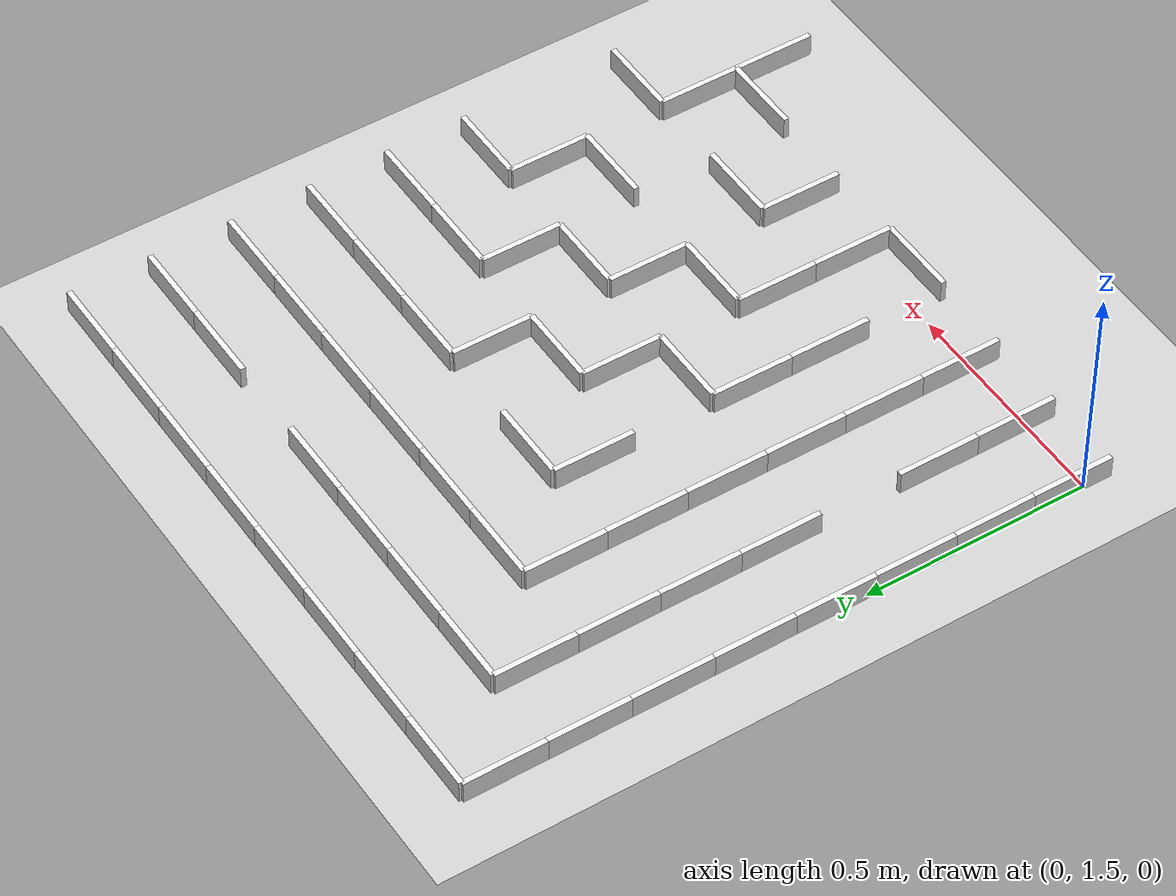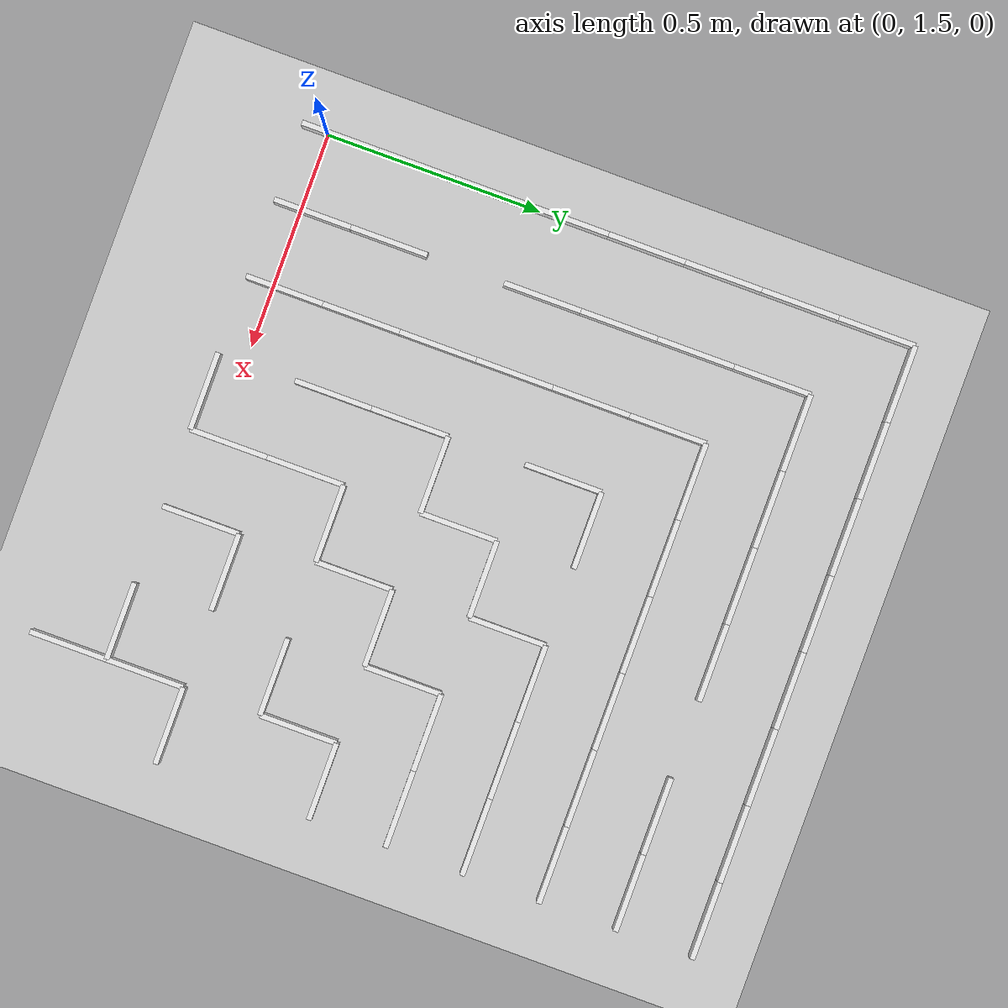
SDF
<sdf version="1.4">
 <world name="default">
  <include><uri>model://ground_plane</uri></include>
  <model name="wall">
   <pose>0.09 2.88 0.025 0 0 0</pose>
   <link name="link">
    <inertial>
     <mass>10</mass>
     <inertia><ixx>1</ixx><ixy>0</ixy><ixz>0</ixz><iyy>1</iyy><iyz>0</iyz><izz>1</izz></inertia>
    </inertial>
    <collision name="collision"><geometry><box><size>0.180 0.012 0.050</size></box></geometry></collision>
    <visual name="visual">
     <geometry><box><size>0.180 0.012 0.050</size></box></geometry>
     <material>
      <script><uri>file://media/materials/scripts/gazebo.material</uri><name>Gazebo/White</name></script>
     </material>
    </visual>
    <velocity_decay><linear>0</linear><angular>0</angular></velocity_decay>
   </link>
   <static>1</static>
  </model>
  <model name="wall">
   <pose>0.27 2.88 0.025 0 0 0</pose>
   <link name="link">
    <inertial>
     <mass>10</mass>
     <inertia><ixx>1</ixx><ixy>0</ixy><ixz>0</ixz><iyy>1</iyy><iyz>0</iyz><izz>1</izz></inertia>
    </inertial>
    <collision name="collision"><geometry><box><size>0.180 0.012 0.050</size></box></geometry></collision>
    <visual name="visual">
     <geometry><box><size>0.180 0.012 0.050</size></box></geometry>
     <material>
      <script><uri>file://media/materials/scripts/gazebo.material</uri><name>Gazebo/White</name></script>
     </material>
    </visual>
    <velocity_decay><linear>0</linear><angular>0</angular></velocity_decay>
   </link>
   <static>1</static>
  </model>
  <model name="wall">
   <pose>0.45 2.88 0.025 0 0 0</pose>
   <link name="link">
    <inertial>
     <mass>10</mass>
     <inertia><ixx>1</ixx><ixy>0</ixy><ixz>0</ixz><iyy>1</iyy><iyz>0</iyz><izz>1</izz></inertia>
    </inertial>
    <collision name="collision"><geometry><box><size>0.180 0.012 0.050</size></box></geometry></collision>
    <visual name="visual">
     <geometry><box><size>0.180 0.012 0.050</size></box></geometry>
     <material>
      <script><uri>file://media/materials/scripts/gazebo.material</uri><name>Gazebo/White</name></script>
     </material>
    </visual>
    <velocity_decay><linear>0</linear><angular>0</angular></velocity_decay>
   </link>
   <static>1</static>
  </model>
  <model name="wall">
   <pose>0.63 2.88 0.025 0 0 0</pose>
   <link name="link">
    <inertial>
     <mass>10</mass>
     <inertia><ixx>1</ixx><ixy>0</ixy><ixz>0</ixz><iyy>1</iyy><iyz>0</iyz><izz>1</izz></inertia>
    </inertial>
    <collision name="collision"><geometry><box><size>0.180 0.012 0.050</size></box></geometry></collision>
    <visual name="visual">
     <geometry><box><size>0.180 0.012 0.050</size></box></geometry>
     <material>
      <script><uri>file://media/materials/scripts/gazebo.material</uri><name>Gazebo/White</name></script>
     </material>
    </visual>
    <velocity_decay><linear>0</linear><angular>0</angular></velocity_decay>
   </link>
   <static>1</static>
  </model>
  <model name="wall">
   <pose>0.81 2.88 0.025 0 0 0</pose>
   <link name="link">
    <inertial>
     <mass>10</mass>
     <inertia><ixx>1</ixx><ixy>0</ixy><ixz>0</ixz><iyy>1</iyy><iyz>0</iyz><izz>1</izz></inertia>
    </inertial>
    <collision name="collision"><geometry><box><size>0.180 0.012 0.050</size></box></geometry></collision>
    <visual name="visual">
     <geometry><box><size>0.180 0.012 0.050</size></box></geometry>
     <material>
      <script><uri>file://media/materials/scripts/gazebo.material</uri><name>Gazebo/White</name></script>
     </material>
    </visual>
    <velocity_decay><linear>0</linear><angular>0</angular></velocity_decay>
   </link>
   <static>1</static>
  </model>
  <model name="wall">
   <pose>0.99 2.88 0.025 0 0 0</pose>
   <link name="link">
    <inertial>
     <mass>10</mass>
     <inertia><ixx>1</ixx><ixy>0</ixy><ixz>0</ixz><iyy>1</iyy><iyz>0</iyz><izz>1</izz></inertia>
    </inertial>
    <collision name="collision"><geometry><box><size>0.180 0.012 0.050</size></box></geometry></collision>
    <visual name="visual">
     <geometry><box><size>0.180 0.012 0.050</size></box></geometry>
     <material>
      <script><uri>file://media/materials/scripts/gazebo.material</uri><name>Gazebo/White</name></script>
     </material>
    </visual>
    <velocity_decay><linear>0</linear><angular>0</angular></velocity_decay>
   </link>
   <static>1</static>
  </model>
  <model name="wall">
   <pose>1.17 2.88 0.025 0 0 0</pose>
   <link name="link">
    <inertial>
     <mass>10</mass>
     <inertia><ixx>1</ixx><ixy>0</ixy><ixz>0</ixz><iyy>1</iyy><iyz>0</iyz><izz>1</izz></inertia>
    </inertial>
    <collision name="collision"><geometry><box><size>0.180 0.012 0.050</size></box></geometry></collision>
    <visual name="visual">
     <geometry><box><size>0.180 0.012 0.050</size></box></geometry>
     <material>
      <script><uri>file://media/materials/scripts/gazebo.material</uri><name>Gazebo/White</name></script>
     </material>
    </visual>
    <velocity_decay><linear>0</linear><angular>0</angular></velocity_decay>
   </link>
   <static>1</static>
  </model>
  <model name="wall">
   <pose>1.35 2.88 0.025 0 0 0</pose>
   <link name="link">
    <inertial>
     <mass>10</mass>
     <inertia><ixx>1</ixx><ixy>0</ixy><ixz>0</ixz><iyy>1</iyy><iyz>0</iyz><izz>1</izz></inertia>
    </inertial>
    <collision name="collision"><geometry><box><size>0.180 0.012 0.050</size></box></geometry></collision>
    <visual name="visual">
     <geometry><box><size>0.180 0.012 0.050</size></box></geometry>
     <material>
      <script><uri>file://media/materials/scripts/gazebo.material</uri><name>Gazebo/White</name></script>
     </material>
    </visual>
    <velocity_decay><linear>0</linear><angular>0</angular></velocity_decay>
   </link>
   <static>1</static>
  </model>
  <model name="wall">
   <pose>0.27 2.7 0.025 0 0 0</pose>
   <link name="link">
    <inertial>
     <mass>10</mass>
     <inertia><ixx>1</ixx><ixy>0</ixy><ixz>0</ixz><iyy>1</iyy><iyz>0</iyz><izz>1</izz></inertia>
    </inertial>
    <collision name="collision"><geometry><box><size>0.180 0.012 0.050</size></box></geometry></collision>
    <visual name="visual">
     <geometry><box><size>0.180 0.012 0.050</size></box></geometry>
     <material>
      <script><uri>file://media/materials/scripts/gazebo.material</uri><name>Gazebo/White</name></script>
     </material>
    </visual>
    <velocity_decay><linear>0</linear><angular>0</angular></velocity_decay>
   </link>
   <static>1</static>
  </model>
  <model name="wall">
   <pose>0.45 2.7 0.025 0 0 0</pose>
   <link name="link">
    <inertial>
     <mass>10</mass>
     <inertia><ixx>1</ixx><ixy>0</ixy><ixz>0</ixz><iyy>1</iyy><iyz>0</iyz><izz>1</izz></inertia>
    </inertial>
    <collision name="collision"><geometry><box><size>0.180 0.012 0.050</size></box></geometry></collision>
    <visual name="visual">
     <geometry><box><size>0.180 0.012 0.050</size></box></geometry>
     <material>
      <script><uri>file://media/materials/scripts/gazebo.material</uri><name>Gazebo/White</name></script>
     </material>
    </visual>
    <velocity_decay><linear>0</linear><angular>0</angular></velocity_decay>
   </link>
   <static>1</static>
  </model>
  <model name="wall">
   <pose>0.63 2.7 0.025 0 0 0</pose>
   <link name="link">
    <inertial>
     <mass>10</mass>
     <inertia><ixx>1</ixx><ixy>0</ixy><ixz>0</ixz><iyy>1</iyy><iyz>0</iyz><izz>1</izz></inertia>
    </inertial>
    <collision name="collision"><geometry><box><size>0.180 0.012 0.050</size></box></geometry></collision>
    <visual name="visual">
     <geometry><box><size>0.180 0.012 0.050</size></box></geometry>
     <material>
      <script><uri>file://media/materials/scripts/gazebo.material</uri><name>Gazebo/White</name></script>
     </material>
    </visual>
    <velocity_decay><linear>0</linear><angular>0</angular></velocity_decay>
   </link>
   <static>1</static>
  </model>
  <model name="wall">
   <pose>0.81 2.7 0.025 0 0 0</pose>
   <link name="link">
    <inertial>
     <mass>10</mass>
     <inertia><ixx>1</ixx><ixy>0</ixy><ixz>0</ixz><iyy>1</iyy><iyz>0</iyz><izz>1</izz></inertia>
    </inertial>
    <collision name="collision"><geometry><box><size>0.180 0.012 0.050</size></box></geometry></collision>
    <visual name="visual">
     <geometry><box><size>0.180 0.012 0.050</size></box></geometry>
     <material>
      <script><uri>file://media/materials/scripts/gazebo.material</uri><name>Gazebo/White</name></script>
     </material>
    </visual>
    <velocity_decay><linear>0</linear><angular>0</angular></velocity_decay>
   </link>
   <static>1</static>
  </model>
  <model name="wall">
   <pose>1.17 2.7 0.025 0 0 0</pose>
   <link name="link">
    <inertial>
     <mass>10</mass>
     <inertia><ixx>1</ixx><ixy>0</ixy><ixz>0</ixz><iyy>1</iyy><iyz>0</iyz><izz>1</izz></inertia>
    </inertial>
    <collision name="collision"><geometry><box><size>0.180 0.012 0.050</size></box></geometry></collision>
    <visual name="visual">
     <geometry><box><size>0.180 0.012 0.050</size></box></geometry>
     <material>
      <script><uri>file://media/materials/scripts/gazebo.material</uri><name>Gazebo/White</name></script>
     </material>
    </visual>
    <velocity_decay><linear>0</linear><angular>0</angular></velocity_decay>
   </link>
   <static>1</static>
  </model>
  <model name="wall">
   <pose>1.35 2.7 0.025 0 0 0</pose>
   <link name="link">
    <inertial>
     <mass>10</mass>
     <inertia><ixx>1</ixx><ixy>0</ixy><ixz>0</ixz><iyy>1</iyy><iyz>0</iyz><izz>1</izz></inertia>
    </inertial>
    <collision name="collision"><geometry><box><size>0.180 0.012 0.050</size></box></geometry></collision>
    <visual name="visual">
     <geometry><box><size>0.180 0.012 0.050</size></box></geometry>
     <material>
      <script><uri>file://media/materials/scripts/gazebo.material</uri><name>Gazebo/White</name></script>
     </material>
    </visual>
    <velocity_decay><linear>0</linear><angular>0</angular></velocity_decay>
   </link>
   <static>1</static>
  </model>
  <model name="wall">
   <pose>0.45 2.52 0.025 0 0 0</pose>
   <link name="link">
    <inertial>
     <mass>10</mass>
     <inertia><ixx>1</ixx><ixy>0</ixy><ixz>0</ixz><iyy>1</iyy><iyz>0</iyz><izz>1</izz></inertia>
    </inertial>
    <collision name="collision"><geometry><box><size>0.180 0.012 0.050</size></box></geometry></collision>
    <visual name="visual">
     <geometry><box><size>0.180 0.012 0.050</size></box></geometry>
     <material>
      <script><uri>file://media/materials/scripts/gazebo.material</uri><name>Gazebo/White</name></script>
     </material>
    </visual>
    <velocity_decay><linear>0</linear><angular>0</angular></velocity_decay>
   </link>
   <static>1</static>
  </model>
  <model name="wall">
   <pose>0.63 2.52 0.025 0 0 0</pose>
   <link name="link">
    <inertial>
     <mass>10</mass>
     <inertia><ixx>1</ixx><ixy>0</ixy><ixz>0</ixz><iyy>1</iyy><iyz>0</iyz><izz>1</izz></inertia>
    </inertial>
    <collision name="collision"><geometry><box><size>0.180 0.012 0.050</size></box></geometry></collision>
    <visual name="visual">
     <geometry><box><size>0.180 0.012 0.050</size></box></geometry>
     <material>
      <script><uri>file://media/materials/scripts/gazebo.material</uri><name>Gazebo/White</name></script>
     </material>
    </visual>
    <velocity_decay><linear>0</linear><angular>0</angular></velocity_decay>
   </link>
   <static>1</static>
  </model>
  <model name="wall">
   <pose>0.81 2.52 0.025 0 0 0</pose>
   <link name="link">
    <inertial>
     <mass>10</mass>
     <inertia><ixx>1</ixx><ixy>0</ixy><ixz>0</ixz><iyy>1</iyy><iyz>0</iyz><izz>1</izz></inertia>
    </inertial>
    <collision name="collision"><geometry><box><size>0.180 0.012 0.050</size></box></geometry></collision>
    <visual name="visual">
     <geometry><box><size>0.180 0.012 0.050</size></box></geometry>
     <material>
      <script><uri>file://media/materials/scripts/gazebo.material</uri><name>Gazebo/White</name></script>
     </material>
    </visual>
    <velocity_decay><linear>0</linear><angular>0</angular></velocity_decay>
   </link>
   <static>1</static>
  </model>
  <model name="wall">
   <pose>0.99 2.52 0.025 0 0 0</pose>
   <link name="link">
    <inertial>
     <mass>10</mass>
     <inertia><ixx>1</ixx><ixy>0</ixy><ixz>0</ixz><iyy>1</iyy><iyz>0</iyz><izz>1</izz></inertia>
    </inertial>
    <collision name="collision"><geometry><box><size>0.180 0.012 0.050</size></box></geometry></collision>
    <visual name="visual">
     <geometry><box><size>0.180 0.012 0.050</size></box></geometry>
     <material>
      <script><uri>file://media/materials/scripts/gazebo.material</uri><name>Gazebo/White</name></script>
     </material>
    </visual>
    <velocity_decay><linear>0</linear><angular>0</angular></velocity_decay>
   </link>
   <static>1</static>
  </model>
  <model name="wall">
   <pose>1.17 2.52 0.025 0 0 0</pose>
   <link name="link">
    <inertial>
     <mass>10</mass>
     <inertia><ixx>1</ixx><ixy>0</ixy><ixz>0</ixz><iyy>1</iyy><iyz>0</iyz><izz>1</izz></inertia>
    </inertial>
    <collision name="collision"><geometry><box><size>0.180 0.012 0.050</size></box></geometry></collision>
    <visual name="visual">
     <geometry><box><size>0.180 0.012 0.050</size></box></geometry>
     <material>
      <script><uri>file://media/materials/scripts/gazebo.material</uri><name>Gazebo/White</name></script>
     </material>
    </visual>
    <velocity_decay><linear>0</linear><angular>0</angular></velocity_decay>
   </link>
   <static>1</static>
  </model>
  <model name="wall">
   <pose>1.35 2.52 0.025 0 0 0</pose>
   <link name="link">
    <inertial>
     <mass>10</mass>
     <inertia><ixx>1</ixx><ixy>0</ixy><ixz>0</ixz><iyy>1</iyy><iyz>0</iyz><izz>1</izz></inertia>
    </inertial>
    <collision name="collision"><geometry><box><size>0.180 0.012 0.050</size></box></geometry></collision>
    <visual name="visual">
     <geometry><box><size>0.180 0.012 0.050</size></box></geometry>
     <material>
      <script><uri>file://media/materials/scripts/gazebo.material</uri><name>Gazebo/White</name></script>
     </material>
    </visual>
    <velocity_decay><linear>0</linear><angular>0</angular></velocity_decay>
   </link>
   <static>1</static>
  </model>
  <model name="wall">
   <pose>0.63 2.34 0.025 0 0 0</pose>
   <link name="link">
    <inertial>
     <mass>10</mass>
     <inertia><ixx>1</ixx><ixy>0</ixy><ixz>0</ixz><iyy>1</iyy><iyz>0</iyz><izz>1</izz></inertia>
    </inertial>
    <collision name="collision"><geometry><box><size>0.180 0.012 0.050</size></box></geometry></collision>
    <visual name="visual">
     <geometry><box><size>0.180 0.012 0.050</size></box></geometry>
     <material>
      <script><uri>file://media/materials/scripts/gazebo.material</uri><name>Gazebo/White</name></script>
     </material>
    </visual>
    <velocity_decay><linear>0</linear><angular>0</angular></velocity_decay>
   </link>
   <static>1</static>
  </model>
  <model name="wall">
   <pose>0.99 2.34 0.025 0 0 0</pose>
   <link name="link">
    <inertial>
     <mass>10</mass>
     <inertia><ixx>1</ixx><ixy>0</ixy><ixz>0</ixz><iyy>1</iyy><iyz>0</iyz><izz>1</izz></inertia>
    </inertial>
    <collision name="collision"><geometry><box><size>0.180 0.012 0.050</size></box></geometry></collision>
    <visual name="visual">
     <geometry><box><size>0.180 0.012 0.050</size></box></geometry>
     <material>
      <script><uri>file://media/materials/scripts/gazebo.material</uri><name>Gazebo/White</name></script>
     </material>
    </visual>
    <velocity_decay><linear>0</linear><angular>0</angular></velocity_decay>
   </link>
   <static>1</static>
  </model>
  <model name="wall">
   <pose>1.17 2.34 0.025 0 0 0</pose>
   <link name="link">
    <inertial>
     <mass>10</mass>
     <inertia><ixx>1</ixx><ixy>0</ixy><ixz>0</ixz><iyy>1</iyy><iyz>0</iyz><izz>1</izz></inertia>
    </inertial>
    <collision name="collision"><geometry><box><size>0.180 0.012 0.050</size></box></geometry></collision>
    <visual name="visual">
     <geometry><box><size>0.180 0.012 0.050</size></box></geometry>
     <material>
      <script><uri>file://media/materials/scripts/gazebo.material</uri><name>Gazebo/White</name></script>
     </material>
    </visual>
    <velocity_decay><linear>0</linear><angular>0</angular></velocity_decay>
   </link>
   <static>1</static>
  </model>
  <model name="wall">
   <pose>1.35 2.34 0.025 0 0 0</pose>
   <link name="link">
    <inertial>
     <mass>10</mass>
     <inertia><ixx>1</ixx><ixy>0</ixy><ixz>0</ixz><iyy>1</iyy><iyz>0</iyz><izz>1</izz></inertia>
    </inertial>
    <collision name="collision"><geometry><box><size>0.180 0.012 0.050</size></box></geometry></collision>
    <visual name="visual">
     <geometry><box><size>0.180 0.012 0.050</size></box></geometry>
     <material>
      <script><uri>file://media/materials/scripts/gazebo.material</uri><name>Gazebo/White</name></script>
     </material>
    </visual>
    <velocity_decay><linear>0</linear><angular>0</angular></velocity_decay>
   </link>
   <static>1</static>
  </model>
  <model name="wall">
   <pose>0.81 2.16 0.025 0 0 0</pose>
   <link name="link">
    <inertial>
     <mass>10</mass>
     <inertia><ixx>1</ixx><ixy>0</ixy><ixz>0</ixz><iyy>1</iyy><iyz>0</iyz><izz>1</izz></inertia>
    </inertial>
    <collision name="collision"><geometry><box><size>0.180 0.012 0.050</size></box></geometry></collision>
    <visual name="visual">
     <geometry><box><size>0.180 0.012 0.050</size></box></geometry>
     <material>
      <script><uri>file://media/materials/scripts/gazebo.material</uri><name>Gazebo/White</name></script>
     </material>
    </visual>
    <velocity_decay><linear>0</linear><angular>0</angular></velocity_decay>
   </link>
   <static>1</static>
  </model>
  <model name="wall">
   <pose>1.17 2.16 0.025 0 0 0</pose>
   <link name="link">
    <inertial>
     <mass>10</mass>
     <inertia><ixx>1</ixx><ixy>0</ixy><ixz>0</ixz><iyy>1</iyy><iyz>0</iyz><izz>1</izz></inertia>
    </inertial>
    <collision name="collision"><geometry><box><size>0.180 0.012 0.050</size></box></geometry></collision>
    <visual name="visual">
     <geometry><box><size>0.180 0.012 0.050</size></box></geometry>
     <material>
      <script><uri>file://media/materials/scripts/gazebo.material</uri><name>Gazebo/White</name></script>
     </material>
    </visual>
    <velocity_decay><linear>0</linear><angular>0</angular></velocity_decay>
   </link>
   <static>1</static>
  </model>
  <model name="wall">
   <pose>1.35 2.16 0.025 0 0 0</pose>
   <link name="link">
    <inertial>
     <mass>10</mass>
     <inertia><ixx>1</ixx><ixy>0</ixy><ixz>0</ixz><iyy>1</iyy><iyz>0</iyz><izz>1</izz></inertia>
    </inertial>
    <collision name="collision"><geometry><box><size>0.180 0.012 0.050</size></box></geometry></collision>
    <visual name="visual">
     <geometry><box><size>0.180 0.012 0.050</size></box></geometry>
     <material>
      <script><uri>file://media/materials/scripts/gazebo.material</uri><name>Gazebo/White</name></script>
     </material>
    </visual>
    <velocity_decay><linear>0</linear><angular>0</angular></velocity_decay>
   </link>
   <static>1</static>
  </model>
  <model name="wall">
   <pose>0.63 1.98 0.025 0 0 0</pose>
   <link name="link">
    <inertial>
     <mass>10</mass>
     <inertia><ixx>1</ixx><ixy>0</ixy><ixz>0</ixz><iyy>1</iyy><iyz>0</iyz><izz>1</izz></inertia>
    </inertial>
    <collision name="collision"><geometry><box><size>0.180 0.012 0.050</size></box></geometry></collision>
    <visual name="visual">
     <geometry><box><size>0.180 0.012 0.050</size></box></geometry>
     <material>
      <script><uri>file://media/materials/scripts/gazebo.material</uri><name>Gazebo/White</name></script>
     </material>
    </visual>
    <velocity_decay><linear>0</linear><angular>0</angular></velocity_decay>
   </link>
   <static>1</static>
  </model>
  <model name="wall">
   <pose>0.99 1.98 0.025 0 0 0</pose>
   <link name="link">
    <inertial>
     <mass>10</mass>
     <inertia><ixx>1</ixx><ixy>0</ixy><ixz>0</ixz><iyy>1</iyy><iyz>0</iyz><izz>1</izz></inertia>
    </inertial>
    <collision name="collision"><geometry><box><size>0.180 0.012 0.050</size></box></geometry></collision>
    <visual name="visual">
     <geometry><box><size>0.180 0.012 0.050</size></box></geometry>
     <material>
      <script><uri>file://media/materials/scripts/gazebo.material</uri><name>Gazebo/White</name></script>
     </material>
    </visual>
    <velocity_decay><linear>0</linear><angular>0</angular></velocity_decay>
   </link>
   <static>1</static>
  </model>
  <model name="wall">
   <pose>1.35 1.98 0.025 0 0 0</pose>
   <link name="link">
    <inertial>
     <mass>10</mass>
     <inertia><ixx>1</ixx><ixy>0</ixy><ixz>0</ixz><iyy>1</iyy><iyz>0</iyz><izz>1</izz></inertia>
    </inertial>
    <collision name="collision"><geometry><box><size>0.180 0.012 0.050</size></box></geometry></collision>
    <visual name="visual">
     <geometry><box><size>0.180 0.012 0.050</size></box></geometry>
     <material>
      <script><uri>file://media/materials/scripts/gazebo.material</uri><name>Gazebo/White</name></script>
     </material>
    </visual>
    <velocity_decay><linear>0</linear><angular>0</angular></velocity_decay>
   </link>
   <static>1</static>
  </model>
  <model name="wall">
   <pose>0.81 1.8 0.025 0 0 0</pose>
   <link name="link">
    <inertial>
     <mass>10</mass>
     <inertia><ixx>1</ixx><ixy>0</ixy><ixz>0</ixz><iyy>1</iyy><iyz>0</iyz><izz>1</izz></inertia>
    </inertial>
    <collision name="collision"><geometry><box><size>0.180 0.012 0.050</size></box></geometry></collision>
    <visual name="visual">
     <geometry><box><size>0.180 0.012 0.050</size></box></geometry>
     <material>
      <script><uri>file://media/materials/scripts/gazebo.material</uri><name>Gazebo/White</name></script>
     </material>
    </visual>
    <velocity_decay><linear>0</linear><angular>0</angular></velocity_decay>
   </link>
   <static>1</static>
  </model>
  <model name="wall">
   <pose>1.17 1.8 0.025 0 0 0</pose>
   <link name="link">
    <inertial>
     <mass>10</mass>
     <inertia><ixx>1</ixx><ixy>0</ixy><ixz>0</ixz><iyy>1</iyy><iyz>0</iyz><izz>1</izz></inertia>
    </inertial>
    <collision name="collision"><geometry><box><size>0.180 0.012 0.050</size></box></geometry></collision>
    <visual name="visual">
     <geometry><box><size>0.180 0.012 0.050</size></box></geometry>
     <material>
      <script><uri>file://media/materials/scripts/gazebo.material</uri><name>Gazebo/White</name></script>
     </material>
    </visual>
    <velocity_decay><linear>0</linear><angular>0</angular></velocity_decay>
   </link>
   <static>1</static>
  </model>
  <model name="wall">
   <pose>0.99 1.62 0.025 0 0 0</pose>
   <link name="link">
    <inertial>
     <mass>10</mass>
     <inertia><ixx>1</ixx><ixy>0</ixy><ixz>0</ixz><iyy>1</iyy><iyz>0</iyz><izz>1</izz></inertia>
    </inertial>
    <collision name="collision"><geometry><box><size>0.180 0.012 0.050</size></box></geometry></collision>
    <visual name="visual">
     <geometry><box><size>0.180 0.012 0.050</size></box></geometry>
     <material>
      <script><uri>file://media/materials/scripts/gazebo.material</uri><name>Gazebo/White</name></script>
     </material>
    </visual>
    <velocity_decay><linear>0</linear><angular>0</angular></velocity_decay>
   </link>
   <static>1</static>
  </model>
  <model name="wall">
   <pose>1.35 1.62 0.025 0 0 0</pose>
   <link name="link">
    <inertial>
     <mass>10</mass>
     <inertia><ixx>1</ixx><ixy>0</ixy><ixz>0</ixz><iyy>1</iyy><iyz>0</iyz><izz>1</izz></inertia>
    </inertial>
    <collision name="collision"><geometry><box><size>0.180 0.012 0.050</size></box></geometry></collision>
    <visual name="visual">
     <geometry><box><size>0.180 0.012 0.050</size></box></geometry>
     <material>
      <script><uri>file://media/materials/scripts/gazebo.material</uri><name>Gazebo/White</name></script>
     </material>
    </visual>
    <velocity_decay><linear>0</linear><angular>0</angular></velocity_decay>
   </link>
   <static>1</static>
  </model>
  <model name="wall">
   <pose>0.63 1.44 0.025 0 0 0</pose>
   <link name="link">
    <inertial>
     <mass>10</mass>
     <inertia><ixx>1</ixx><ixy>0</ixy><ixz>0</ixz><iyy>1</iyy><iyz>0</iyz><izz>1</izz></inertia>
    </inertial>
    <collision name="collision"><geometry><box><size>0.180 0.012 0.050</size></box></geometry></collision>
    <visual name="visual">
     <geometry><box><size>0.180 0.012 0.050</size></box></geometry>
     <material>
      <script><uri>file://media/materials/scripts/gazebo.material</uri><name>Gazebo/White</name></script>
     </material>
    </visual>
    <velocity_decay><linear>0</linear><angular>0</angular></velocity_decay>
   </link>
   <static>1</static>
  </model>
  <model name="wall">
   <pose>1.17 1.44 0.025 0 0 0</pose>
   <link name="link">
    <inertial>
     <mass>10</mass>
     <inertia><ixx>1</ixx><ixy>0</ixy><ixz>0</ixz><iyy>1</iyy><iyz>0</iyz><izz>1</izz></inertia>
    </inertial>
    <collision name="collision"><geometry><box><size>0.180 0.012 0.050</size></box></geometry></collision>
    <visual name="visual">
     <geometry><box><size>0.180 0.012 0.050</size></box></geometry>
     <material>
      <script><uri>file://media/materials/scripts/gazebo.material</uri><name>Gazebo/White</name></script>
     </material>
    </visual>
    <velocity_decay><linear>0</linear><angular>0</angular></velocity_decay>
   </link>
   <static>1</static>
  </model>
  <model name="wall">
   <pose>0.0 2.79 0.025 0 0 1.57</pose>
   <link name="link">
    <inertial>
     <mass>10</mass>
     <inertia><ixx>1</ixx><ixy>0</ixy><ixz>0</ixz><iyy>1</iyy><iyz>0</iyz><izz>1</izz></inertia>
    </inertial>
    <collision name="collision"><geometry><box><size>0.180 0.012 0.050</size></box></geometry></collision>
    <visual name="visual">
     <geometry><box><size>0.180 0.012 0.050</size></box></geometry>
     <material>
      <script><uri>file://media/materials/scripts/gazebo.material</uri><name>Gazebo/White</name></script>
     </material>
    </visual>
    <velocity_decay><linear>0</linear><angular>0</angular></velocity_decay>
   </link>
   <static>1</static>
  </model>
  <model name="wall">
   <pose>0.0 2.61 0.025 0 0 1.57</pose>
   <link name="link">
    <inertial>
     <mass>10</mass>
     <inertia><ixx>1</ixx><ixy>0</ixy><ixz>0</ixz><iyy>1</iyy><iyz>0</iyz><izz>1</izz></inertia>
    </inertial>
    <collision name="collision"><geometry><box><size>0.180 0.012 0.050</size></box></geometry></collision>
    <visual name="visual">
     <geometry><box><size>0.180 0.012 0.050</size></box></geometry>
     <material>
      <script><uri>file://media/materials/scripts/gazebo.material</uri><name>Gazebo/White</name></script>
     </material>
    </visual>
    <velocity_decay><linear>0</linear><angular>0</angular></velocity_decay>
   </link>
   <static>1</static>
  </model>
  <model name="wall">
   <pose>0.18 2.61 0.025 0 0 1.57</pose>
   <link name="link">
    <inertial>
     <mass>10</mass>
     <inertia><ixx>1</ixx><ixy>0</ixy><ixz>0</ixz><iyy>1</iyy><iyz>0</iyz><izz>1</izz></inertia>
    </inertial>
    <collision name="collision"><geometry><box><size>0.180 0.012 0.050</size></box></geometry></collision>
    <visual name="visual">
     <geometry><box><size>0.180 0.012 0.050</size></box></geometry>
     <material>
      <script><uri>file://media/materials/scripts/gazebo.material</uri><name>Gazebo/White</name></script>
     </material>
    </visual>
    <velocity_decay><linear>0</linear><angular>0</angular></velocity_decay>
   </link>
   <static>1</static>
  </model>
  <model name="wall">
   <pose>0.0 2.43 0.025 0 0 1.57</pose>
   <link name="link">
    <inertial>
     <mass>10</mass>
     <inertia><ixx>1</ixx><ixy>0</ixy><ixz>0</ixz><iyy>1</iyy><iyz>0</iyz><izz>1</izz></inertia>
    </inertial>
    <collision name="collision"><geometry><box><size>0.180 0.012 0.050</size></box></geometry></collision>
    <visual name="visual">
     <geometry><box><size>0.180 0.012 0.050</size></box></geometry>
     <material>
      <script><uri>file://media/materials/scripts/gazebo.material</uri><name>Gazebo/White</name></script>
     </material>
    </visual>
    <velocity_decay><linear>0</linear><angular>0</angular></velocity_decay>
   </link>
   <static>1</static>
  </model>
  <model name="wall">
   <pose>0.18 2.43 0.025 0 0 1.57</pose>
   <link name="link">
    <inertial>
     <mass>10</mass>
     <inertia><ixx>1</ixx><ixy>0</ixy><ixz>0</ixz><iyy>1</iyy><iyz>0</iyz><izz>1</izz></inertia>
    </inertial>
    <collision name="collision"><geometry><box><size>0.180 0.012 0.050</size></box></geometry></collision>
    <visual name="visual">
     <geometry><box><size>0.180 0.012 0.050</size></box></geometry>
     <material>
      <script><uri>file://media/materials/scripts/gazebo.material</uri><name>Gazebo/White</name></script>
     </material>
    </visual>
    <velocity_decay><linear>0</linear><angular>0</angular></velocity_decay>
   </link>
   <static>1</static>
  </model>
  <model name="wall">
   <pose>0.36 2.43 0.025 0 0 1.57</pose>
   <link name="link">
    <inertial>
     <mass>10</mass>
     <inertia><ixx>1</ixx><ixy>0</ixy><ixz>0</ixz><iyy>1</iyy><iyz>0</iyz><izz>1</izz></inertia>
    </inertial>
    <collision name="collision"><geometry><box><size>0.180 0.012 0.050</size></box></geometry></collision>
    <visual name="visual">
     <geometry><box><size>0.180 0.012 0.050</size></box></geometry>
     <material>
      <script><uri>file://media/materials/scripts/gazebo.material</uri><name>Gazebo/White</name></script>
     </material>
    </visual>
    <velocity_decay><linear>0</linear><angular>0</angular></velocity_decay>
   </link>
   <static>1</static>
  </model>
  <model name="wall">
   <pose>0.0 2.25 0.025 0 0 1.57</pose>
   <link name="link">
    <inertial>
     <mass>10</mass>
     <inertia><ixx>1</ixx><ixy>0</ixy><ixz>0</ixz><iyy>1</iyy><iyz>0</iyz><izz>1</izz></inertia>
    </inertial>
    <collision name="collision"><geometry><box><size>0.180 0.012 0.050</size></box></geometry></collision>
    <visual name="visual">
     <geometry><box><size>0.180 0.012 0.050</size></box></geometry>
     <material>
      <script><uri>file://media/materials/scripts/gazebo.material</uri><name>Gazebo/White</name></script>
     </material>
    </visual>
    <velocity_decay><linear>0</linear><angular>0</angular></velocity_decay>
   </link>
   <static>1</static>
  </model>
  <model name="wall">
   <pose>0.18 2.25 0.025 0 0 1.57</pose>
   <link name="link">
    <inertial>
     <mass>10</mass>
     <inertia><ixx>1</ixx><ixy>0</ixy><ixz>0</ixz><iyy>1</iyy><iyz>0</iyz><izz>1</izz></inertia>
    </inertial>
    <collision name="collision"><geometry><box><size>0.180 0.012 0.050</size></box></geometry></collision>
    <visual name="visual">
     <geometry><box><size>0.180 0.012 0.050</size></box></geometry>
     <material>
      <script><uri>file://media/materials/scripts/gazebo.material</uri><name>Gazebo/White</name></script>
     </material>
    </visual>
    <velocity_decay><linear>0</linear><angular>0</angular></velocity_decay>
   </link>
   <static>1</static>
  </model>
  <model name="wall">
   <pose>0.36 2.25 0.025 0 0 1.57</pose>
   <link name="link">
    <inertial>
     <mass>10</mass>
     <inertia><ixx>1</ixx><ixy>0</ixy><ixz>0</ixz><iyy>1</iyy><iyz>0</iyz><izz>1</izz></inertia>
    </inertial>
    <collision name="collision"><geometry><box><size>0.180 0.012 0.050</size></box></geometry></collision>
    <visual name="visual">
     <geometry><box><size>0.180 0.012 0.050</size></box></geometry>
     <material>
      <script><uri>file://media/materials/scripts/gazebo.material</uri><name>Gazebo/White</name></script>
     </material>
    </visual>
    <velocity_decay><linear>0</linear><angular>0</angular></velocity_decay>
   </link>
   <static>1</static>
  </model>
  <model name="wall">
   <pose>0.54 2.25 0.025 0 0 1.57</pose>
   <link name="link">
    <inertial>
     <mass>10</mass>
     <inertia><ixx>1</ixx><ixy>0</ixy><ixz>0</ixz><iyy>1</iyy><iyz>0</iyz><izz>1</izz></inertia>
    </inertial>
    <collision name="collision"><geometry><box><size>0.180 0.012 0.050</size></box></geometry></collision>
    <visual name="visual">
     <geometry><box><size>0.180 0.012 0.050</size></box></geometry>
     <material>
      <script><uri>file://media/materials/scripts/gazebo.material</uri><name>Gazebo/White</name></script>
     </material>
    </visual>
    <velocity_decay><linear>0</linear><angular>0</angular></velocity_decay>
   </link>
   <static>1</static>
  </model>
  <model name="wall">
   <pose>0.9 2.25 0.025 0 0 1.57</pose>
   <link name="link">
    <inertial>
     <mass>10</mass>
     <inertia><ixx>1</ixx><ixy>0</ixy><ixz>0</ixz><iyy>1</iyy><iyz>0</iyz><izz>1</izz></inertia>
    </inertial>
    <collision name="collision"><geometry><box><size>0.180 0.012 0.050</size></box></geometry></collision>
    <visual name="visual">
     <geometry><box><size>0.180 0.012 0.050</size></box></geometry>
     <material>
      <script><uri>file://media/materials/scripts/gazebo.material</uri><name>Gazebo/White</name></script>
     </material>
    </visual>
    <velocity_decay><linear>0</linear><angular>0</angular></velocity_decay>
   </link>
   <static>1</static>
  </model>
  <model name="wall">
   <pose>0.0 2.07 0.025 0 0 1.57</pose>
   <link name="link">
    <inertial>
     <mass>10</mass>
     <inertia><ixx>1</ixx><ixy>0</ixy><ixz>0</ixz><iyy>1</iyy><iyz>0</iyz><izz>1</izz></inertia>
    </inertial>
    <collision name="collision"><geometry><box><size>0.180 0.012 0.050</size></box></geometry></collision>
    <visual name="visual">
     <geometry><box><size>0.180 0.012 0.050</size></box></geometry>
     <material>
      <script><uri>file://media/materials/scripts/gazebo.material</uri><name>Gazebo/White</name></script>
     </material>
    </visual>
    <velocity_decay><linear>0</linear><angular>0</angular></velocity_decay>
   </link>
   <static>1</static>
  </model>
  <model name="wall">
   <pose>0.18 2.07 0.025 0 0 1.57</pose>
   <link name="link">
    <inertial>
     <mass>10</mass>
     <inertia><ixx>1</ixx><ixy>0</ixy><ixz>0</ixz><iyy>1</iyy><iyz>0</iyz><izz>1</izz></inertia>
    </inertial>
    <collision name="collision"><geometry><box><size>0.180 0.012 0.050</size></box></geometry></collision>
    <visual name="visual">
     <geometry><box><size>0.180 0.012 0.050</size></box></geometry>
     <material>
      <script><uri>file://media/materials/scripts/gazebo.material</uri><name>Gazebo/White</name></script>
     </material>
    </visual>
    <velocity_decay><linear>0</linear><angular>0</angular></velocity_decay>
   </link>
   <static>1</static>
  </model>
  <model name="wall">
   <pose>0.36 2.07 0.025 0 0 1.57</pose>
   <link name="link">
    <inertial>
     <mass>10</mass>
     <inertia><ixx>1</ixx><ixy>0</ixy><ixz>0</ixz><iyy>1</iyy><iyz>0</iyz><izz>1</izz></inertia>
    </inertial>
    <collision name="collision"><geometry><box><size>0.180 0.012 0.050</size></box></geometry></collision>
    <visual name="visual">
     <geometry><box><size>0.180 0.012 0.050</size></box></geometry>
     <material>
      <script><uri>file://media/materials/scripts/gazebo.material</uri><name>Gazebo/White</name></script>
     </material>
    </visual>
    <velocity_decay><linear>0</linear><angular>0</angular></velocity_decay>
   </link>
   <static>1</static>
  </model>
  <model name="wall">
   <pose>0.72 2.07 0.025 0 0 1.57</pose>
   <link name="link">
    <inertial>
     <mass>10</mass>
     <inertia><ixx>1</ixx><ixy>0</ixy><ixz>0</ixz><iyy>1</iyy><iyz>0</iyz><izz>1</izz></inertia>
    </inertial>
    <collision name="collision"><geometry><box><size>0.180 0.012 0.050</size></box></geometry></collision>
    <visual name="visual">
     <geometry><box><size>0.180 0.012 0.050</size></box></geometry>
     <material>
      <script><uri>file://media/materials/scripts/gazebo.material</uri><name>Gazebo/White</name></script>
     </material>
    </visual>
    <velocity_decay><linear>0</linear><angular>0</angular></velocity_decay>
   </link>
   <static>1</static>
  </model>
  <model name="wall">
   <pose>1.08 2.07 0.025 0 0 1.57</pose>
   <link name="link">
    <inertial>
     <mass>10</mass>
     <inertia><ixx>1</ixx><ixy>0</ixy><ixz>0</ixz><iyy>1</iyy><iyz>0</iyz><izz>1</izz></inertia>
    </inertial>
    <collision name="collision"><geometry><box><size>0.180 0.012 0.050</size></box></geometry></collision>
    <visual name="visual">
     <geometry><box><size>0.180 0.012 0.050</size></box></geometry>
     <material>
      <script><uri>file://media/materials/scripts/gazebo.material</uri><name>Gazebo/White</name></script>
     </material>
    </visual>
    <velocity_decay><linear>0</linear><angular>0</angular></velocity_decay>
   </link>
   <static>1</static>
  </model>
  <model name="wall">
   <pose>0.0 1.89 0.025 0 0 1.57</pose>
   <link name="link">
    <inertial>
     <mass>10</mass>
     <inertia><ixx>1</ixx><ixy>0</ixy><ixz>0</ixz><iyy>1</iyy><iyz>0</iyz><izz>1</izz></inertia>
    </inertial>
    <collision name="collision"><geometry><box><size>0.180 0.012 0.050</size></box></geometry></collision>
    <visual name="visual">
     <geometry><box><size>0.180 0.012 0.050</size></box></geometry>
     <material>
      <script><uri>file://media/materials/scripts/gazebo.material</uri><name>Gazebo/White</name></script>
     </material>
    </visual>
    <velocity_decay><linear>0</linear><angular>0</angular></velocity_decay>
   </link>
   <static>1</static>
  </model>
  <model name="wall">
   <pose>0.36 1.89 0.025 0 0 1.57</pose>
   <link name="link">
    <inertial>
     <mass>10</mass>
     <inertia><ixx>1</ixx><ixy>0</ixy><ixz>0</ixz><iyy>1</iyy><iyz>0</iyz><izz>1</izz></inertia>
    </inertial>
    <collision name="collision"><geometry><box><size>0.180 0.012 0.050</size></box></geometry></collision>
    <visual name="visual">
     <geometry><box><size>0.180 0.012 0.050</size></box></geometry>
     <material>
      <script><uri>file://media/materials/scripts/gazebo.material</uri><name>Gazebo/White</name></script>
     </material>
    </visual>
    <velocity_decay><linear>0</linear><angular>0</angular></velocity_decay>
   </link>
   <static>1</static>
  </model>
  <model name="wall">
   <pose>0.54 1.89 0.025 0 0 1.57</pose>
   <link name="link">
    <inertial>
     <mass>10</mass>
     <inertia><ixx>1</ixx><ixy>0</ixy><ixz>0</ixz><iyy>1</iyy><iyz>0</iyz><izz>1</izz></inertia>
    </inertial>
    <collision name="collision"><geometry><box><size>0.180 0.012 0.050</size></box></geometry></collision>
    <visual name="visual">
     <geometry><box><size>0.180 0.012 0.050</size></box></geometry>
     <material>
      <script><uri>file://media/materials/scripts/gazebo.material</uri><name>Gazebo/White</name></script>
     </material>
    </visual>
    <velocity_decay><linear>0</linear><angular>0</angular></velocity_decay>
   </link>
   <static>1</static>
  </model>
  <model name="wall">
   <pose>0.9 1.89 0.025 0 0 1.57</pose>
   <link name="link">
    <inertial>
     <mass>10</mass>
     <inertia><ixx>1</ixx><ixy>0</ixy><ixz>0</ixz><iyy>1</iyy><iyz>0</iyz><izz>1</izz></inertia>
    </inertial>
    <collision name="collision"><geometry><box><size>0.180 0.012 0.050</size></box></geometry></collision>
    <visual name="visual">
     <geometry><box><size>0.180 0.012 0.050</size></box></geometry>
     <material>
      <script><uri>file://media/materials/scripts/gazebo.material</uri><name>Gazebo/White</name></script>
     </material>
    </visual>
    <velocity_decay><linear>0</linear><angular>0</angular></velocity_decay>
   </link>
   <static>1</static>
  </model>
  <model name="wall">
   <pose>1.26 1.89 0.025 0 0 1.57</pose>
   <link name="link">
    <inertial>
     <mass>10</mass>
     <inertia><ixx>1</ixx><ixy>0</ixy><ixz>0</ixz><iyy>1</iyy><iyz>0</iyz><izz>1</izz></inertia>
    </inertial>
    <collision name="collision"><geometry><box><size>0.180 0.012 0.050</size></box></geometry></collision>
    <visual name="visual">
     <geometry><box><size>0.180 0.012 0.050</size></box></geometry>
     <material>
      <script><uri>file://media/materials/scripts/gazebo.material</uri><name>Gazebo/White</name></script>
     </material>
    </visual>
    <velocity_decay><linear>0</linear><angular>0</angular></velocity_decay>
   </link>
   <static>1</static>
  </model>
  <model name="wall">
   <pose>0.0 1.71 0.025 0 0 1.57</pose>
   <link name="link">
    <inertial>
     <mass>10</mass>
     <inertia><ixx>1</ixx><ixy>0</ixy><ixz>0</ixz><iyy>1</iyy><iyz>0</iyz><izz>1</izz></inertia>
    </inertial>
    <collision name="collision"><geometry><box><size>0.180 0.012 0.050</size></box></geometry></collision>
    <visual name="visual">
     <geometry><box><size>0.180 0.012 0.050</size></box></geometry>
     <material>
      <script><uri>file://media/materials/scripts/gazebo.material</uri><name>Gazebo/White</name></script>
     </material>
    </visual>
    <velocity_decay><linear>0</linear><angular>0</angular></velocity_decay>
   </link>
   <static>1</static>
  </model>
  <model name="wall">
   <pose>0.18 1.71 0.025 0 0 1.57</pose>
   <link name="link">
    <inertial>
     <mass>10</mass>
     <inertia><ixx>1</ixx><ixy>0</ixy><ixz>0</ixz><iyy>1</iyy><iyz>0</iyz><izz>1</izz></inertia>
    </inertial>
    <collision name="collision"><geometry><box><size>0.180 0.012 0.050</size></box></geometry></collision>
    <visual name="visual">
     <geometry><box><size>0.180 0.012 0.050</size></box></geometry>
     <material>
      <script><uri>file://media/materials/scripts/gazebo.material</uri><name>Gazebo/White</name></script>
     </material>
    </visual>
    <velocity_decay><linear>0</linear><angular>0</angular></velocity_decay>
   </link>
   <static>1</static>
  </model>
  <model name="wall">
   <pose>0.36 1.71 0.025 0 0 1.57</pose>
   <link name="link">
    <inertial>
     <mass>10</mass>
     <inertia><ixx>1</ixx><ixy>0</ixy><ixz>0</ixz><iyy>1</iyy><iyz>0</iyz><izz>1</izz></inertia>
    </inertial>
    <collision name="collision"><geometry><box><size>0.180 0.012 0.050</size></box></geometry></collision>
    <visual name="visual">
     <geometry><box><size>0.180 0.012 0.050</size></box></geometry>
     <material>
      <script><uri>file://media/materials/scripts/gazebo.material</uri><name>Gazebo/White</name></script>
     </material>
    </visual>
    <velocity_decay><linear>0</linear><angular>0</angular></velocity_decay>
   </link>
   <static>1</static>
  </model>
  <model name="wall">
   <pose>0.54 1.71 0.025 0 0 1.57</pose>
   <link name="link">
    <inertial>
     <mass>10</mass>
     <inertia><ixx>1</ixx><ixy>0</ixy><ixz>0</ixz><iyy>1</iyy><iyz>0</iyz><izz>1</izz></inertia>
    </inertial>
    <collision name="collision"><geometry><box><size>0.180 0.012 0.050</size></box></geometry></collision>
    <visual name="visual">
     <geometry><box><size>0.180 0.012 0.050</size></box></geometry>
     <material>
      <script><uri>file://media/materials/scripts/gazebo.material</uri><name>Gazebo/White</name></script>
     </material>
    </visual>
    <velocity_decay><linear>0</linear><angular>0</angular></velocity_decay>
   </link>
   <static>1</static>
  </model>
  <model name="wall">
   <pose>0.72 1.71 0.025 0 0 1.57</pose>
   <link name="link">
    <inertial>
     <mass>10</mass>
     <inertia><ixx>1</ixx><ixy>0</ixy><ixz>0</ixz><iyy>1</iyy><iyz>0</iyz><izz>1</izz></inertia>
    </inertial>
    <collision name="collision"><geometry><box><size>0.180 0.012 0.050</size></box></geometry></collision>
    <visual name="visual">
     <geometry><box><size>0.180 0.012 0.050</size></box></geometry>
     <material>
      <script><uri>file://media/materials/scripts/gazebo.material</uri><name>Gazebo/White</name></script>
     </material>
    </visual>
    <velocity_decay><linear>0</linear><angular>0</angular></velocity_decay>
   </link>
   <static>1</static>
  </model>
  <model name="wall">
   <pose>0.0 1.53 0.025 0 0 1.57</pose>
   <link name="link">
    <inertial>
     <mass>10</mass>
     <inertia><ixx>1</ixx><ixy>0</ixy><ixz>0</ixz><iyy>1</iyy><iyz>0</iyz><izz>1</izz></inertia>
    </inertial>
    <collision name="collision"><geometry><box><size>0.180 0.012 0.050</size></box></geometry></collision>
    <visual name="visual">
     <geometry><box><size>0.180 0.012 0.050</size></box></geometry>
     <material>
      <script><uri>file://media/materials/scripts/gazebo.material</uri><name>Gazebo/White</name></script>
     </material>
    </visual>
    <velocity_decay><linear>0</linear><angular>0</angular></velocity_decay>
   </link>
   <static>1</static>
  </model>
  <model name="wall">
   <pose>0.18 1.53 0.025 0 0 1.57</pose>
   <link name="link">
    <inertial>
     <mass>10</mass>
     <inertia><ixx>1</ixx><ixy>0</ixy><ixz>0</ixz><iyy>1</iyy><iyz>0</iyz><izz>1</izz></inertia>
    </inertial>
    <collision name="collision"><geometry><box><size>0.180 0.012 0.050</size></box></geometry></collision>
    <visual name="visual">
     <geometry><box><size>0.180 0.012 0.050</size></box></geometry>
     <material>
      <script><uri>file://media/materials/scripts/gazebo.material</uri><name>Gazebo/White</name></script>
     </material>
    </visual>
    <velocity_decay><linear>0</linear><angular>0</angular></velocity_decay>
   </link>
   <static>1</static>
  </model>
  <model name="wall">
   <pose>0.36 1.53 0.025 0 0 1.57</pose>
   <link name="link">
    <inertial>
     <mass>10</mass>
     <inertia><ixx>1</ixx><ixy>0</ixy><ixz>0</ixz><iyy>1</iyy><iyz>0</iyz><izz>1</izz></inertia>
    </inertial>
    <collision name="collision"><geometry><box><size>0.180 0.012 0.050</size></box></geometry></collision>
    <visual name="visual">
     <geometry><box><size>0.180 0.012 0.050</size></box></geometry>
     <material>
      <script><uri>file://media/materials/scripts/gazebo.material</uri><name>Gazebo/White</name></script>
     </material>
    </visual>
    <velocity_decay><linear>0</linear><angular>0</angular></velocity_decay>
   </link>
   <static>1</static>
  </model>
  <model name="wall">
   <pose>0.72 1.53 0.025 0 0 1.57</pose>
   <link name="link">
    <inertial>
     <mass>10</mass>
     <inertia><ixx>1</ixx><ixy>0</ixy><ixz>0</ixz><iyy>1</iyy><iyz>0</iyz><izz>1</izz></inertia>
    </inertial>
    <collision name="collision"><geometry><box><size>0.180 0.012 0.050</size></box></geometry></collision>
    <visual name="visual">
     <geometry><box><size>0.180 0.012 0.050</size></box></geometry>
     <material>
      <script><uri>file://media/materials/scripts/gazebo.material</uri><name>Gazebo/White</name></script>
     </material>
    </visual>
    <velocity_decay><linear>0</linear><angular>0</angular></velocity_decay>
   </link>
   <static>1</static>
  </model>
  <model name="wall">
   <pose>0.9 1.53 0.025 0 0 1.57</pose>
   <link name="link">
    <inertial>
     <mass>10</mass>
     <inertia><ixx>1</ixx><ixy>0</ixy><ixz>0</ixz><iyy>1</iyy><iyz>0</iyz><izz>1</izz></inertia>
    </inertial>
    <collision name="collision"><geometry><box><size>0.180 0.012 0.050</size></box></geometry></collision>
    <visual name="visual">
     <geometry><box><size>0.180 0.012 0.050</size></box></geometry>
     <material>
      <script><uri>file://media/materials/scripts/gazebo.material</uri><name>Gazebo/White</name></script>
     </material>
    </visual>
    <velocity_decay><linear>0</linear><angular>0</angular></velocity_decay>
   </link>
   <static>1</static>
  </model>
  <model name="wall">
   <pose>1.26 1.53 0.025 0 0 1.57</pose>
   <link name="link">
    <inertial>
     <mass>10</mass>
     <inertia><ixx>1</ixx><ixy>0</ixy><ixz>0</ixz><iyy>1</iyy><iyz>0</iyz><izz>1</izz></inertia>
    </inertial>
    <collision name="collision"><geometry><box><size>0.180 0.012 0.050</size></box></geometry></collision>
    <visual name="visual">
     <geometry><box><size>0.180 0.012 0.050</size></box></geometry>
     <material>
      <script><uri>file://media/materials/scripts/gazebo.material</uri><name>Gazebo/White</name></script>
     </material>
    </visual>
    <velocity_decay><linear>0</linear><angular>0</angular></velocity_decay>
   </link>
   <static>1</static>
  </model>
  <model name="wall">
   <pose>1.26 1.35 0.025 0 0 1.57</pose>
   <link name="link">
    <inertial>
     <mass>10</mass>
     <inertia><ixx>1</ixx><ixy>0</ixy><ixz>0</ixz><iyy>1</iyy><iyz>0</iyz><izz>1</izz></inertia>
    </inertial>
    <collision name="collision"><geometry><box><size>0.180 0.012 0.050</size></box></geometry></collision>
    <visual name="visual">
     <geometry><box><size>0.180 0.012 0.050</size></box></geometry>
     <material>
      <script><uri>file://media/materials/scripts/gazebo.material</uri><name>Gazebo/White</name></script>
     </material>
    </visual>
    <velocity_decay><linear>0</linear><angular>0</angular></velocity_decay>
   </link>
   <static>1</static>
  </model>
 </world>
</sdf>
